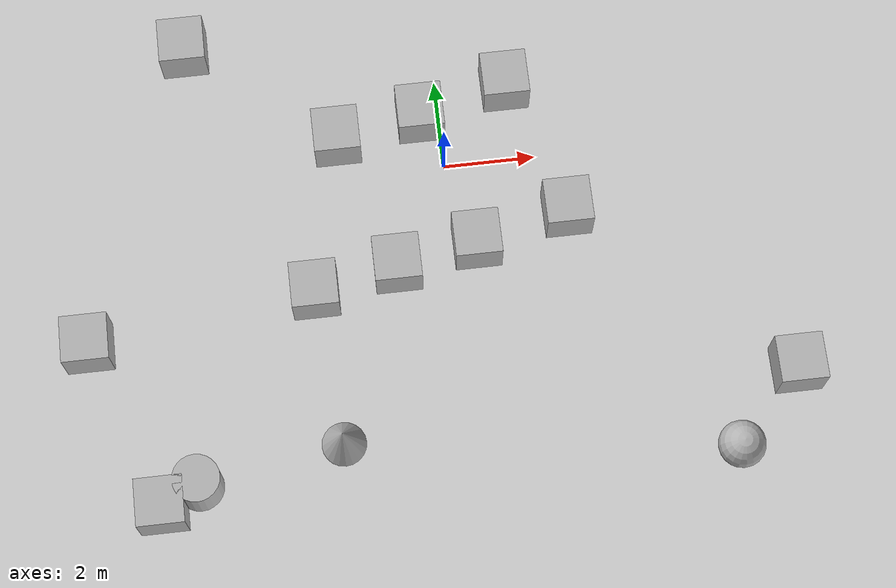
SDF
<sdf version="1.10">
 <world name="marsyard2020">
  <physics name="1ms" type="ignored">
   <max_step_size>0.001</max_step_size>
   <real_time_factor>1</real_time_factor>
   <real_time_update_rate>1000</real_time_update_rate>
  </physics>
  <plugin name="gz::sim::systems::Physics" filename="gz-sim-physics-system"/>
  <plugin name="gz::sim::systems::UserCommands" filename="gz-sim-user-commands-system"/>
  <plugin name="gz::sim::systems::SceneBroadcaster" filename="gz-sim-scene-broadcaster-system"/>
  <plugin name="gz::sim::systems::Contact" filename="gz-sim-contact-system"/>
  <plugin name="gz::sim::systems::Sensors" filename="gz-sim-sensors-system">
   <render_engine>ogre2</render_engine>
  </plugin>
  <plugin name="gz::sim::systems::Imu" filename="gz-sim-imu-system"/>
  <gravity>0 0 -9.8000000000000007</gravity>
  <magnetic_field>5.5644999999999998e-06 2.2875799999999999e-05 -4.2388400000000002e-05</magnetic_field>
  <atmosphere type="adiabatic"/>
  <scene>
   <ambient>0.400000006 0.400000006 0.400000006 1</ambient>
   <background>0.699999988 0.699999988 0.699999988 1</background>
   <shadows>true</shadows>
  </scene>
  <model name="ground_plane">
   <static>true</static>
   <link name="link">
    <collision name="collision">
     <geometry><plane><normal>0 0 1</normal><size>100 100</size></plane></geometry>
    </collision>
    <visual name="visual">
     <geometry><plane><normal>0 0 1</normal><size>100 100</size></plane></geometry>
     <material>
      <ambient>0.800000012 0.800000012 0.800000012 1</ambient>
      <diffuse>0.800000012 0.800000012 0.800000012 1</diffuse>
      <specular>0.800000012 0.800000012 0.800000012 1</specular>
     </material>
    </visual>
    <inertial>
     <mass>1</mass>
     <inertia><ixx>1</ixx><ixy>0</ixy><ixz>0</ixz><iyy>1</iyy><iyz>0</iyz><izz>1</izz></inertia>
    </inertial>
   </link>
  </model>
  <model name="box">
   <pose>1.517300009727478 1.6797268390655518 0.49999999990199806 6.2287739151293738e-22 9.3279666454713669e-22 -3.6315533669320137e-22</pose>
   <link name="box_link">
    <inertial>
     <inertia><ixx>0.16666</ixx><ixy>0</ixy><ixz>0</ixz><iyy>0.16666</iyy><iyz>0</iyz><izz>0.16666</izz></inertia>
     <mass>1</mass>
    </inertial>
    <collision name="box_collision"><geometry><box><size>1 1 1</size></box></geometry></collision>
    <visual name="box_visual">
     <geometry><box><size>1 1 1</size></box></geometry>
     <material>
      <ambient>0.300000012 0.300000012 0.300000012 1</ambient>
      <diffuse>0.699999988 0.699999988 0.699999988 1</diffuse>
      <specular>1 1 1 1</specular>
     </material>
    </visual>
   </link>
   <static>false</static>
  </model>
  <model name="box_0">
   <pose>-0.41391301155090332 1.1324286460876465 0.49999999990199806 6.2287739151293738e-22 9.3279666454713669e-22 -3.6315533669320137e-22</pose>
   <link name="box_link">
    <inertial>
     <inertia><ixx>0.16666</ixx><ixy>0</ixy><ixz>0</ixz><iyy>0.16666</iyy><iyz>0</iyz><izz>0.16666</izz></inertia>
     <mass>1</mass>
    </inertial>
    <collision name="box_collision"><geometry><box><size>1 1 1</size></box></geometry></collision>
    <visual name="box_visual">
     <geometry><box><size>1 1 1</size></box></geometry>
     <material>
      <ambient>0.300000012 0.300000012 0.300000012 1</ambient>
      <diffuse>0.699999988 0.699999988 0.699999988 1</diffuse>
      <specular>1 1 1 1</specular>
     </material>
    </visual>
   </link>
   <static>false</static>
  </model>
  <model name="box_1">
   <pose>-2.2810719013214111 0.78898298740386963 0.49999999990199806 6.2287739151293738e-22 9.3279666454713669e-22 -3.6315533669320137e-22</pose>
   <link name="box_link">
    <inertial>
     <inertia><ixx>0.16666</ixx><ixy>0</ixy><ixz>0</ixz><iyy>0.16666</iyy><iyz>0</iyz><izz>0.16666</izz></inertia>
     <mass>1</mass>
    </inertial>
    <collision name="box_collision"><geometry><box><size>1 1 1</size></box></geometry></collision>
    <visual name="box_visual">
     <geometry><box><size>1 1 1</size></box></geometry>
     <material>
      <ambient>0.300000012 0.300000012 0.300000012 1</ambient>
      <diffuse>0.699999988 0.699999988 0.699999988 1</diffuse>
      <specular>1 1 1 1</specular>
     </material>
    </visual>
   </link>
   <static>false</static>
  </model>
  <model name="box_2">
   <pose>2.5118999481201172 -1.4081877470016479 0.49999999990199806 6.2287739151293738e-22 9.3279666454713669e-22 -3.6315533669320137e-22</pose>
   <link name="box_link">
    <inertial>
     <inertia><ixx>0.16666</ixx><ixy>0</ixy><ixz>0</ixz><iyy>0.16666</iyy><iyz>0</iyz><izz>0.16666</izz></inertia>
     <mass>1</mass>
    </inertial>
    <collision name="box_collision"><geometry><box><size>1 1 1</size></box></geometry></collision>
    <visual name="box_visual">
     <geometry><box><size>1 1 1</size></box></geometry>
     <material>
      <ambient>0.300000012 0.300000012 0.300000012 1</ambient>
      <diffuse>0.699999988 0.699999988 0.699999988 1</diffuse>
      <specular>1 1 1 1</specular>
     </material>
    </visual>
   </link>
   <static>false</static>
  </model>
  <model name="box_3">
   <pose>0.48391300439834595 -1.9210236072540283 0.49999999990199806 6.2287739151293738e-22 9.3279666454713669e-22 -3.6315533669320137e-22</pose>
   <link name="box_link">
    <inertial>
     <inertia><ixx>0.16666</ixx><ixy>0</ixy><ixz>0</ixz><iyy>0.16666</iyy><iyz>0</iyz><izz>0.16666</izz></inertia>
     <mass>1</mass>
    </inertial>
    <collision name="box_collision"><geometry><box><size>1 1 1</size></box></geometry></collision>
    <visual name="box_visual">
     <geometry><box><size>1 1 1</size></box></geometry>
     <material>
      <ambient>0.300000012 0.300000012 0.300000012 1</ambient>
      <diffuse>0.699999988 0.699999988 0.699999988 1</diffuse>
      <specular>1 1 1 1</specular>
     </material>
    </visual>
   </link>
   <static>false</static>
  </model>
  <model name="box_4">
   <pose>-1.2716399431228638 -2.2720999717712402 0.49999999990199806 6.2287739151293738e-22 9.3279666454713669e-22 -3.6315533669320137e-22</pose>
   <link name="box_link">
    <inertial>
     <inertia><ixx>0.16666</ixx><ixy>0</ixy><ixz>0</ixz><iyy>0.16666</iyy><iyz>0</iyz><izz>0.16666</izz></inertia>
     <mass>1</mass>
    </inertial>
    <collision name="box_collision"><geometry><box><size>1 1 1</size></box></geometry></collision>
    <visual name="box_visual">
     <geometry><box><size>1 1 1</size></box></geometry>
     <material>
      <ambient>0.300000012 0.300000012 0.300000012 1</ambient>
      <diffuse>0.699999988 0.699999988 0.699999988 1</diffuse>
      <specular>1 1 1 1</specular>
     </material>
    </visual>
   </link>
   <static>false</static>
  </model>
  <model name="box_5">
   <pose>-3.0792000293731689 -2.6587810516357422 0.49999999990199806 6.2287739151293738e-22 9.3279666454713669e-22 -3.6315533669320137e-22</pose>
   <link name="box_link">
    <inertial>
     <inertia><ixx>0.16666</ixx><ixy>0</ixy><ixz>0</ixz><iyy>0.16666</iyy><iyz>0</iyz><izz>0.16666</izz></inertia>
     <mass>1</mass>
    </inertial>
    <collision name="box_collision"><geometry><box><size>1 1 1</size></box></geometry></collision>
    <visual name="box_visual">
     <geometry><box><size>1 1 1</size></box></geometry>
     <material>
      <ambient>0.300000012 0.300000012 0.300000012 1</ambient>
      <diffuse>0.699999988 0.699999988 0.699999988 1</diffuse>
      <specular>1 1 1 1</specular>
     </material>
    </visual>
   </link>
   <static>false</static>
  </model>
  <model name="box_6">
   <pose>-5.4624043245983334 3.2840946396408564 0.49999999990199806 6.2287739151293738e-22 9.3279666454713669e-22 -3.6315533669320137e-22</pose>
   <link name="box_link">
    <inertial>
     <inertia><ixx>0.16666</ixx><ixy>0</ixy><ixz>0</ixz><iyy>0.16666</iyy><iyz>0</iyz><izz>0.16666</izz></inertia>
     <mass>1</mass>
    </inertial>
    <collision name="box_collision"><geometry><box><size>1 1 1</size></box></geometry></collision>
    <visual name="box_visual">
     <geometry><box><size>1 1 1</size></box></geometry>
     <material>
      <ambient>0.300000012 0.300000012 0.300000012 1</ambient>
      <diffuse>0.699999988 0.699999988 0.699999988 1</diffuse>
      <specular>1 1 1 1</specular>
     </material>
    </visual>
   </link>
   <static>false</static>
  </model>
  <model name="cone">
   <pose>-2.7925143361570739 -5.9831303352233274 0.49999999993296756 5.2544931075677214e-17 -7.7132841038480847e-10 -7.6328321314384305e-23</pose>
   <link name="cone_link">
    <inertial>
     <inertia>
      <ixx>0.074999999999999997</ixx>
      <ixy>0</ixy>
      <ixz>0</ixz>
      <iyy>0.074999999999999997</iyy>
      <iyz>0</iyz>
      <izz>0.074999999999999997</izz>
     </inertia>
     <mass>1</mass>
    </inertial>
    <collision name="cone_collision">
     <geometry><cone><radius>0.5</radius><length>1</length></cone></geometry>
    </collision>
    <visual name="cone_visual">
     <geometry><cone><radius>0.5</radius><length>1</length></cone></geometry>
     <material>
      <ambient>0.300000012 0.300000012 0.300000012 1</ambient>
      <diffuse>0.699999988 0.699999988 0.699999988 1</diffuse>
      <specular>1 1 1 1</specular>
     </material>
    </visual>
   </link>
   <static>false</static>
  </model>
  <model name="cylinder">
   <pose>-5.8518527434784025 -6.5678588326692369 0.50000000814191914 -6.5491257325291538e-09 2.7875458840776355e-08 1.5366343654501714e-06</pose>
   <link name="cylinder_link">
    <inertial>
     <inertia>
      <ixx>0.14580000000000001</ixx>
      <ixy>0</ixy>
      <ixz>0</ixz>
      <iyy>0.14580000000000001</iyy>
      <iyz>0</iyz>
      <izz>0.125</izz>
     </inertia>
     <mass>1</mass>
    </inertial>
    <collision name="cylinder_collision">
     <geometry><cylinder><radius>0.5</radius><length>1</length></cylinder></geometry>
    </collision>
    <visual name="cylinder_visual">
     <geometry><cylinder><radius>0.5</radius><length>1</length></cylinder></geometry>
     <material>
      <ambient>0.300000012 0.300000012 0.300000012 1</ambient>
      <diffuse>0.699999988 0.699999988 0.699999988 1</diffuse>
      <specular>1 1 1 1</specular>
     </material>
    </visual>
   </link>
   <static>false</static>
  </model>
  <model name="box_7">
   <pose>-6.6349043735522377 -6.9408803244439143 0.49999999019937902 1.4889310089134634e-09 -1.4495932721868188e-08 4.1377505297722188e-06</pose>
   <link name="box_link">
    <inertial>
     <inertia><ixx>0.16666</ixx><ixy>0</ixy><ixz>0</ixz><iyy>0.16666</iyy><iyz>0</iyz><izz>0.16666</izz></inertia>
     <mass>1</mass>
    </inertial>
    <collision name="box_collision"><geometry><box><size>1 1 1</size></box></geometry></collision>
    <visual name="box_visual">
     <geometry><box><size>1 1 1</size></box></geometry>
     <material>
      <ambient>0.300000012 0.300000012 0.300000012 1</ambient>
      <diffuse>0.699999988 0.699999988 0.699999988 1</diffuse>
      <specular>1 1 1 1</specular>
     </material>
    </visual>
   </link>
   <static>false</static>
  </model>
  <model name="box_8">
   <pose>-7.9600439065493953 -3.3120717042717205 0.49999999990497518 -2.1318120453243371e-11 -1.5662662500695365e-11 1.7875187937985687e-12</pose>
   <link name="box_link">
    <inertial>
     <inertia><ixx>0.16666</ixx><ixy>0</ixy><ixz>0</ixz><iyy>0.16666</iyy><iyz>0</iyz><izz>0.16666</izz></inertia>
     <mass>1</mass>
    </inertial>
    <collision name="box_collision"><geometry><box><size>1 1 1</size></box></geometry></collision>
    <visual name="box_visual">
     <geometry><box><size>1 1 1</size></box></geometry>
     <material>
      <ambient>0.300000012 0.300000012 0.300000012 1</ambient>
      <diffuse>0.699999988 0.699999988 0.699999988 1</diffuse>
      <specular>1 1 1 1</specular>
     </material>
    </visual>
   </link>
   <static>false</static>
  </model>
  <model name="capsule">
   <pose>-6.9676600886906908 -4.591641265583922 -0.60610800159903677 1.5312167407914352e-05 -1.6916366561899563e-05 -0.031176077051907478</pose>
   <link name="capsule_link">
    <inertial>
     <inertia>
      <ixx>0.074153999999999998</ixx>
      <ixy>0</ixy>
      <ixz>0</ixz>
      <iyy>0.074153999999999998</iyy>
      <iyz>0</iyz>
      <izz>0.018769000000000001</izz>
     </inertia>
     <mass>1</mass>
    </inertial>
    <collision name="capsule_collision">
     <geometry>
      <capsule><radius>0.20000000000000001</radius><length>0.59999999999999998</length></capsule>
     </geometry>
    </collision>
    <visual name="capsule_visual">
     <geometry>
      <capsule><radius>0.20000000000000001</radius><length>0.59999999999999998</length></capsule>
     </geometry>
     <material>
      <ambient>0.300000012 0.300000012 0.300000012 1</ambient>
      <diffuse>0.699999988 0.699999988 0.699999988 1</diffuse>
      <specular>1 1 1 1</specular>
     </material>
    </visual>
   </link>
   <static>false</static>
  </model>
  <model name="capsule_0">
   <pose>5.2310321578675314 -5.7809350613887469 -0.59174058574615196 5.7787719438599977e-07 3.9199077449845687e-07 -0.075212462315004142</pose>
   <link name="capsule_link">
    <inertial>
     <inertia>
      <ixx>0.074153999999999998</ixx>
      <ixy>0</ixy>
      <ixz>0</ixz>
      <iyy>0.074153999999999998</iyy>
      <iyz>0</iyz>
      <izz>0.018769000000000001</izz>
     </inertia>
     <mass>1</mass>
    </inertial>
    <collision name="capsule_collision">
     <geometry>
      <capsule><radius>0.20000000000000001</radius><length>0.59999999999999998</length></capsule>
     </geometry>
    </collision>
    <visual name="capsule_visual">
     <geometry>
      <capsule><radius>0.20000000000000001</radius><length>0.59999999999999998</length></capsule>
     </geometry>
     <material>
      <ambient>0.300000012 0.300000012 0.300000012 1</ambient>
      <diffuse>0.699999988 0.699999988 0.699999988 1</diffuse>
      <specular>1 1 1 1</specular>
     </material>
    </visual>
   </link>
   <static>false</static>
  </model>
  <model name="sphere">
   <pose>5.4278241251701953 -7.0172640379969033 0.49999999020007974 0.041883362567826467 0.0066693375144653904 0.00013968807892913052</pose>
   <link name="sphere_link">
    <inertial>
     <inertia>
      <ixx>0.10000000000000001</ixx>
      <ixy>0</ixy>
      <ixz>0</ixz>
      <iyy>0.10000000000000001</iyy>
      <iyz>0</iyz>
      <izz>0.10000000000000001</izz>
     </inertia>
     <mass>1</mass>
    </inertial>
    <collision name="sphere_collision"><geometry><sphere><radius>0.5</radius></sphere></geometry></collision>
    <visual name="sphere_visual">
     <geometry><sphere><radius>0.5</radius></sphere></geometry>
     <material>
      <ambient>0.300000012 0.300000012 0.300000012 1</ambient>
      <diffuse>0.699999988 0.699999988 0.699999988 1</diffuse>
      <specular>1 1 1 1</specular>
     </material>
    </visual>
   </link>
   <static>false</static>
  </model>
  <model name="box_9">
   <pose>6.8793700228317824 -5.4265988363672939 0.49999999990199806 6.2287739151293738e-22 9.3279666454713669e-22 -3.6315533669320137e-22</pose>
   <link name="box_link">
    <inertial>
     <inertia><ixx>0.16666</ixx><ixy>0</ixy><ixz>0</ixz><iyy>0.16666</iyy><iyz>0</iyz><izz>0.16666</izz></inertia>
     <mass>1</mass>
    </inertial>
    <collision name="box_collision"><geometry><box><size>1 1 1</size></box></geometry></collision>
    <visual name="box_visual">
     <geometry><box><size>1 1 1</size></box></geometry>
     <material>
      <ambient>0.300000012 0.300000012 0.300000012 1</ambient>
      <diffuse>0.699999988 0.699999988 0.699999988 1</diffuse>
      <specular>1 1 1 1</specular>
     </material>
    </visual>
   </link>
   <static>false</static>
  </model>
  <model name="ground_plane_1">
   <static>true</static>
   <link name="link">
    <collision name="collision">
     <geometry><plane><normal>0 0 1</normal><size>100 100</size></plane></geometry>
    </collision>
    <visual name="visual">
     <geometry><plane><normal>0 0 1</normal><size>100 100</size></plane></geometry>
     <material>
      <ambient>0.800000012 0.800000012 0.800000012 1</ambient>
      <diffuse>0.800000012 0.800000012 0.800000012 1</diffuse>
      <specular>0.800000012 0.800000012 0.800000012 1</specular>
     </material>
    </visual>
    <inertial>
     <mass>1</mass>
     <inertia><ixx>1</ixx><ixy>0</ixy><ixz>0</ixz><iyy>1</iyy><iyz>0</iyz><izz>1</izz></inertia>
    </inertial>
   </link>
   <pose>-17.864545496052614 -3.2692800340440478 0 0 0 0</pose>
  </model>
  <light name="sun" type="directional">
   <pose>0 0 10 0 0 0</pose>
   <intensity>1</intensity>
   <direction>-0.5 0.10000000000000001 -0.90000000000000002</direction>
   <diffuse>0.800000012 0.800000012 0.800000012 1</diffuse>
   <specular>0.200000003 0.200000003 0.200000003 1</specular>
   <attenuation>
    <range>1000</range>
    <linear>0.0099999997764825821</linear>
    <constant>0.89999997615814209</constant>
    <quadratic>0.0010000000474974513</quadratic>
   </attenuation>
   <spot><inner_angle>0</inner_angle><outer_angle>0</outer_angle><falloff>0</falloff></spot>
  </light>
 </world>
</sdf>
